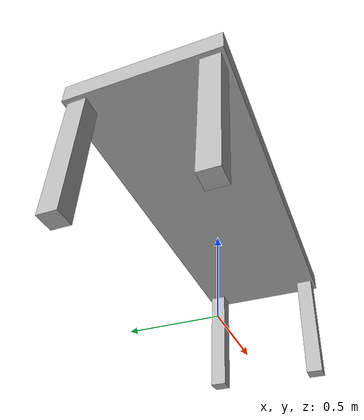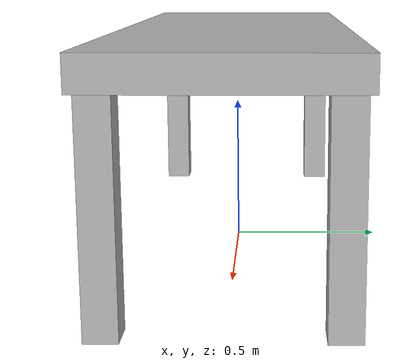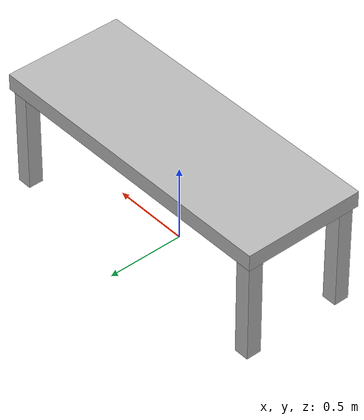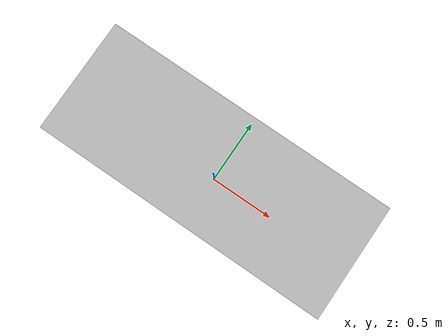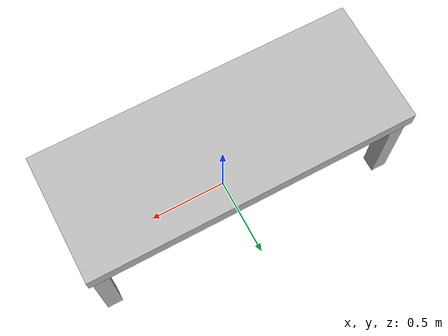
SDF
<?xml version="1.0" ?>
<sdf version="1.6">
  <model name="rwc2024/dinner_table">
    <static>true</static>
    <link name="1_link">
      <collision name="1_col">
        <geometry>
          <box>
            <size>2.0 0.78 0.105</size>
          </box>
        </geometry>
      </collision>
      <visual name="1_vis">
        <geometry>
          <box>
            <size>2.0 0.78 0.105</size>
          </box>
        </geometry>
      </visual>
      <pose>0.0 0.0 0.7165 0 0 0</pose>
    </link>
    <link name="2_link">
      <collision name="2_col">
        <geometry>
          <box>
            <size>0.097 0.097 0.664</size>
          </box>
        </geometry>
      </collision>
      <visual name="2_vis">
        <geometry>
          <box>
            <size>0.097 0.097 0.664</size>
          </box>
        </geometry>
      </visual>
      <pose>-0.931 -0.323 0.332 0 0 0</pose>
    </link>
    <link name="3_link">
      <collision name="3_col">
        <geometry>
          <box>
            <size>0.097 0.097 0.664</size>
          </box>
        </geometry>
      </collision>
      <visual name="3_vis">
        <geometry>
          <box>
            <size>0.097 0.097 0.664</size>
          </box>
        </geometry>
      </visual>
      <pose>0.931 -0.323 0.332 0 0 0</pose>
    </link>
    <link name="4_link">
      <collision name="4_col">
        <geometry>
          <box>
            <size>0.097 0.097 0.664</size>
          </box>
        </geometry>
      </collision>
      <visual name="4_vis">
        <geometry>
          <box>
            <size>0.097 0.097 0.664</size>
          </box>
        </geometry>
      </visual>
      <pose>-0.931 0.323 0.332 0 0 0</pose>
    </link>
    <link name="5_link">
      <collision name="5_col">
        <geometry>
          <box>
            <size>0.097 0.097 0.664</size>
          </box>
        </geometry>
      </collision>
      <visual name="5_vis">
        <geometry>
          <box>
            <size>0.097 0.097 0.664</size>
          </box>
        </geometry>
      </visual>
      <pose>0.931 0.323 0.332 0 0 0</pose>
    </link>
    <link name="on_top_of">
      <virtual_volume name="on_top_of_vv">
        <geometry>
          <box>
            <size>1.939 0.683 0.25</size>
          </box>
        </geometry>
        <pose>0.0 0.0 0.914 0 0 0</pose>
      </virtual_volume>
    </link>
    <link name="in_front_of">
      <virtual_volume name="in_front_of_vv">
        <geometry>
          <box>
            <size>0.2 0.543 0.01</size>
          </box>
        </geometry>
        <pose>1.4795 0.0 0.005 0 0 0</pose>
      </virtual_volume>
    </link>
  </model>
</sdf>
